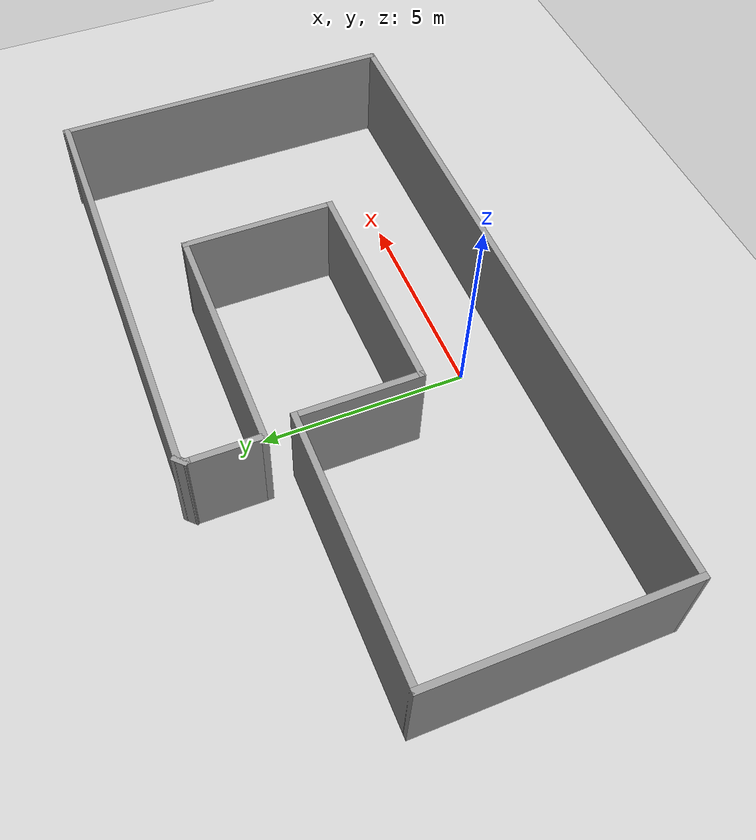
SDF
<sdf version="1.6">
 <world name="default">
  <light name="sun" type="directional">
   <pose>0 0 10 0 -0 0</pose>
   <diffuse>0.8 0.8 0.8 1</diffuse>
   <specular>0.2 0.2 0.2 1</specular>
   <attenuation>
    <range>1000</range>
    <constant>0.9</constant>
    <linear>0.01</linear>
    <quadratic>0.001</quadratic>
   </attenuation>
   <direction>-0.5 0.1 -0.9</direction>
  </light>
  <model name="ground_plane">
   <static>1</static>
   <link name="link">
    <collision name="collision">
     <geometry><plane><normal>0 0 1</normal><size>100 100</size></plane></geometry>
     <surface>
      <contact><collide_bitmask>65535</collide_bitmask></contact>
      <friction><ode><mu>100</mu><mu2>50</mu2></ode></friction>
     </surface>
    </collision>
    <visual name="visual">
     <cast_shadows>0</cast_shadows>
     <geometry><plane><normal>0 0 1</normal><size>100 100</size></plane></geometry>
     <material>
      <script><uri>file://media/materials/scripts/gazebo.material</uri><name>Gazebo/Grey</name></script>
     </material>
    </visual>
   </link>
  </model>
  <gravity>0 0 -9.8</gravity>
  <magnetic_field>6e-06 2.3e-05 -4.2e-05</magnetic_field>
  <atmosphere type="adiabatic"/>
  <physics name="default_physics" default="0" type="ode">
   <max_step_size>0.001</max_step_size>
   <real_time_factor>1</real_time_factor>
   <real_time_update_rate>1000</real_time_update_rate>
  </physics>
  <scene><ambient>0.4 0.4 0.4 1</ambient><background>0.7 0.7 0.7 1</background><shadows>1</shadows></scene>
  <spherical_coordinates>
   <surface_model>EARTH_WGS84</surface_model>
   <latitude_deg>0</latitude_deg>
   <longitude_deg>0</longitude_deg>
   <elevation>0</elevation>
   <heading_deg>0</heading_deg>
  </spherical_coordinates>
  <model name="c">
   <pose>0.906957 2.89787 0 0 -0 0</pose>
   <link name="Wall_0">
    <collision name="Wall_0_Collision">
     <geometry><box><size>10.4157 0.15 2.5</size></box></geometry>
     <pose>0 0 1.25 0 -0 0</pose>
    </collision>
    <visual name="Wall_0_Visual">
     <pose>0 0 1.25 0 -0 0</pose>
     <geometry><box><size>10.4157 0.15 2.5</size></box></geometry>
     <material>
      <script><uri>file://media/materials/scripts/gazebo.material</uri><name>Gazebo/Grey</name></script>
      <ambient>1 1 1 1</ambient>
     </material>
     <meta><layer>0</layer></meta>
    </visual>
    <pose>2.9999 4.14214 0 0 0 -0.010222</pose>
   </link>
   <link name="Wall_12">
    <collision name="Wall_12_Collision">
     <geometry><box><size>3 0.15 2.5</size></box></geometry>
     <pose>0 0 1.25 0 -0 0</pose>
    </collision>
    <visual name="Wall_12_Visual">
     <pose>0 0 1.25 0 -0 0</pose>
     <geometry><box><size>3 0.15 2.5</size></box></geometry>
     <material>
      <script><uri>file://media/materials/scripts/gazebo.material</uri><name>Gazebo/Grey</name></script>
      <ambient>1 1 1 1</ambient>
     </material>
     <meta><layer>0</layer></meta>
    </visual>
    <pose>-2.03291 0.234628 0 0 0 -1.5708</pose>
   </link>
   <link name="Wall_13">
    <collision name="Wall_13_Collision">
     <geometry><box><size>5.5 0.15 2.5</size></box></geometry>
     <pose>0 0 1.25 0 -0 0</pose>
    </collision>
    <visual name="Wall_13_Visual">
     <pose>0 0 1.25 0 -0 0</pose>
     <geometry><box><size>5.5 0.15 2.5</size></box></geometry>
     <material>
      <script><uri>file://media/materials/scripts/gazebo.material</uri><name>Gazebo/Grey</name></script>
      <ambient>1 1 1 1</ambient>
     </material>
     <meta><layer>0</layer></meta>
    </visual>
    <pose>0.64209 -1.19037 0 0 -0 0</pose>
   </link>
   <link name="Wall_14">
    <collision name="Wall_14_Collision">
     <geometry><box><size>3.75 0.15 2.5</size></box></geometry>
     <pose>0 0 1.25 0 -0 0</pose>
    </collision>
    <visual name="Wall_14_Visual">
     <pose>0 0 1.25 0 -0 0</pose>
     <geometry><box><size>3.75 0.15 2.5</size></box></geometry>
     <material>
      <script><uri>file://media/materials/scripts/gazebo.material</uri><name>Gazebo/Grey</name></script>
      <ambient>1 1 1 1</ambient>
     </material>
     <meta><layer>0</layer></meta>
    </visual>
    <pose>3.31709 0.609628 0 0 -0 1.5708</pose>
   </link>
   <link name="Wall_15">
    <collision name="Wall_15_Collision">
     <geometry><box><size>5.75 0.15 2.5</size></box></geometry>
     <pose>0 0 1.25 0 -0 0</pose>
    </collision>
    <visual name="Wall_15_Visual">
     <pose>0 0 1.25 0 -0 0</pose>
     <geometry><box><size>5.75 0.15 2.5</size></box></geometry>
     <material>
      <script><uri>file://media/materials/scripts/gazebo.material</uri><name>Gazebo/Grey</name></script>
      <ambient>1 1 1 1</ambient>
     </material>
     <meta><layer>0</layer></meta>
    </visual>
    <pose>0.51709 2.40963 0 0 -0 3.14159</pose>
   </link>
   <link name="Wall_16">
    <collision name="Wall_16_Collision">
     <geometry><box><size>1.78498 0.15 2.5</size></box></geometry>
     <pose>0 0 1.25 0 -0 0</pose>
    </collision>
    <visual name="Wall_16_Visual">
     <pose>0 0 1.25 0 -0 0</pose>
     <geometry><box><size>1.78498 0.15 2.5</size></box></geometry>
     <material>
      <script><uri>file://media/materials/scripts/gazebo.material</uri><name>Gazebo/Grey</name></script>
      <ambient>1 1 1 1</ambient>
     </material>
     <meta><layer>0</layer></meta>
    </visual>
    <pose>-2.28291 3.22712 0 0 -0 1.5708</pose>
   </link>
   <link name="Wall_17">
    <collision name="Wall_17_Collision">
     <geometry><box><size>0.15 0.15 2.5</size></box></geometry>
     <pose>0 0 1.25 0 -0 0</pose>
    </collision>
    <visual name="Wall_17_Visual">
     <pose>0 0 1.25 0 -0 0</pose>
     <geometry><box><size>0.15 0.15 2.5</size></box></geometry>
     <material>
      <script><uri>file://media/materials/scripts/gazebo.material</uri><name>Gazebo/Grey</name></script>
      <ambient>1 1 1 1</ambient>
     </material>
     <meta><layer>0</layer></meta>
    </visual>
    <pose>-2.28291 4.04461 0 0 -0 0</pose>
   </link>
   <link name="Wall_18">
    <collision name="Wall_18_Collision">
     <geometry><box><size>0.362132 0.15 2.5</size></box></geometry>
     <pose>0 0 1.25 0 -0 0</pose>
    </collision>
    <visual name="Wall_18_Visual">
     <pose>0 0 1.25 0 -0 0</pose>
     <geometry><box><size>0.362132 0.15 2.5</size></box></geometry>
     <material>
      <script><uri>file://media/materials/scripts/gazebo.material</uri><name>Gazebo/Grey</name></script>
      <ambient>1 1 1 1</ambient>
     </material>
     <meta><layer>0</layer></meta>
    </visual>
    <pose>-2.20791 4.15459 0 0 -0 0.785398</pose>
   </link>
   <link name="Wall_2">
    <collision name="Wall_2_Collision">
     <geometry><box><size>8.5 0.15 2.5</size></box></geometry>
     <pose>0 0 1.25 0 -0 0</pose>
    </collision>
    <visual name="Wall_2_Visual">
     <pose>0 0 1.25 0 -0 0</pose>
     <geometry><box><size>8.5 0.15 2.5</size></box></geometry>
     <material>
      <script><uri>file://media/materials/scripts/gazebo.material</uri><name>Gazebo/Grey</name></script>
      <ambient>1 1 1 1</ambient>
     </material>
     <meta><layer>0</layer></meta>
    </visual>
    <pose>8.13271 -0.050352 0 0 0 -1.5708</pose>
   </link>
   <link name="Wall_4">
    <collision name="Wall_4_Collision">
     <geometry><box><size>16.4158 0.15 2.5</size></box></geometry>
     <pose>0 0 1.25 0 -0 0</pose>
    </collision>
    <visual name="Wall_4_Visual">
     <pose>0 0 1.25 0 -0 0</pose>
     <geometry><box><size>16.4158 0.15 2.5</size></box></geometry>
     <material>
      <script><uri>file://media/materials/scripts/gazebo.material</uri><name>Gazebo/Grey</name></script>
      <ambient>1 1 1 1</ambient>
     </material>
     <meta><layer>0</layer></meta>
    </visual>
    <pose>-0.000102 -4.22535 0 0 -0 3.13729</pose>
   </link>
   <link name="Wall_5">
    <collision name="Wall_5_Collision">
     <geometry><box><size>6 0.15 2.5</size></box></geometry>
     <pose>0 0 1.25 0 -0 0</pose>
    </collision>
    <visual name="Wall_5_Visual">
     <pose>0 0 1.25 0 -0 0</pose>
     <geometry><box><size>6 0.15 2.5</size></box></geometry>
     <material>
      <script><uri>file://media/materials/scripts/gazebo.material</uri><name>Gazebo/Grey</name></script>
      <ambient>1 1 1 1</ambient>
     </material>
     <meta><layer>0</layer></meta>
    </visual>
    <pose>-8.13291 -1.26537 0 0 -0 1.5708</pose>
   </link>
   <link name="Wall_6">
    <collision name="Wall_6_Collision">
     <geometry><box><size>6.25 0.15 2.5</size></box></geometry>
     <pose>0 0 1.25 0 -0 0</pose>
    </collision>
    <visual name="Wall_6_Visual">
     <pose>0 0 1.25 0 -0 0</pose>
     <geometry><box><size>6.25 0.15 2.5</size></box></geometry>
     <material>
      <script><uri>file://media/materials/scripts/gazebo.material</uri><name>Gazebo/Grey</name></script>
      <ambient>1 1 1 1</ambient>
     </material>
     <meta><layer>0</layer></meta>
    </visual>
    <pose>-5.08291 1.65963 0 0 -0 0</pose>
   </link>
   <static>1</static>
  </model>
 </world>
</sdf>
